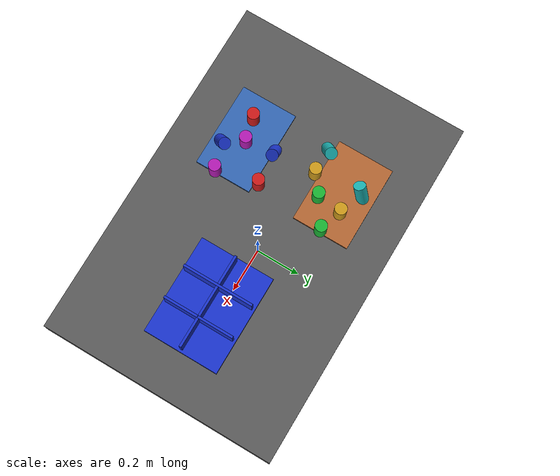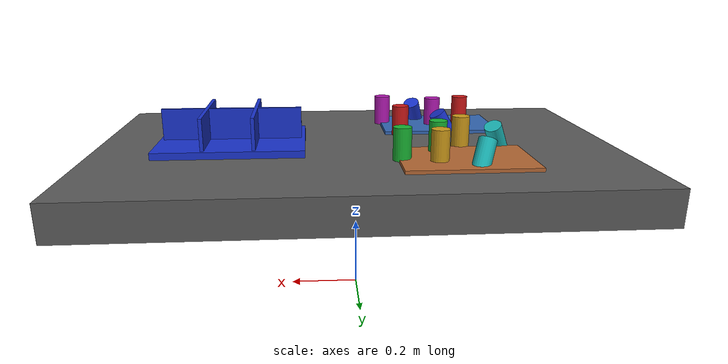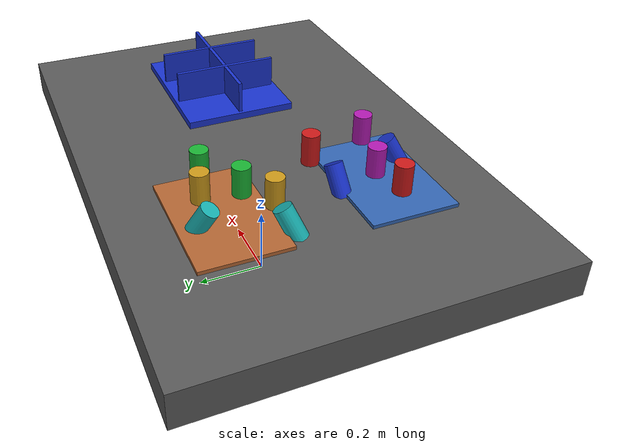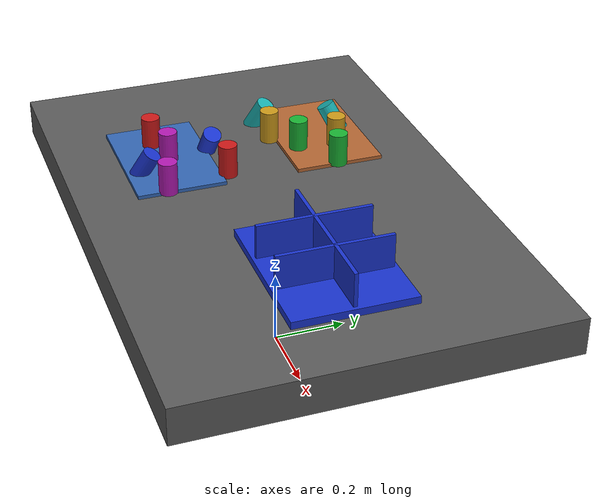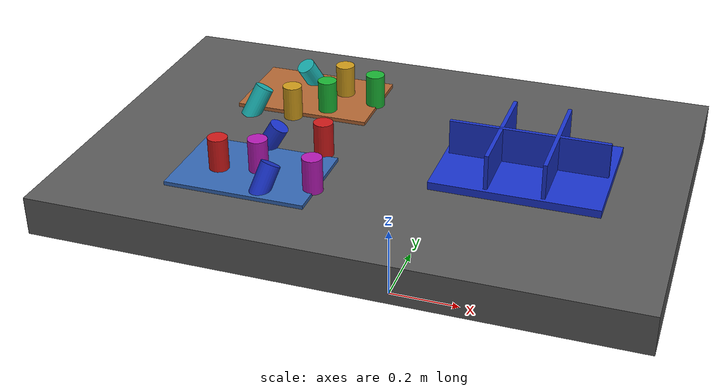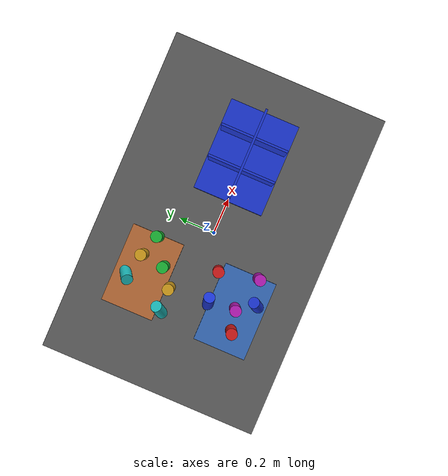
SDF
<?xml version="1.0" ?>
<sdf version="1.9">
  <!-- Standalone M1B scene.  The controller-backed Panda is spawned by the
       existing launch path; this file never alters the frozen M1A cube world. -->
  <world name="industrial_cylinder_v1">
    <physics name="bullet" type="bullet"><max_step_size>0.001</max_step_size><real_time_factor>1.0</real_time_factor></physics>
    <plugin name="gz::sim::systems::Physics" filename="gz-sim-physics-system"><engine><filename>gz-physics-bullet-featherstone-plugin</filename></engine></plugin>
    <plugin name="gz::sim::systems::UserCommands" filename="gz-sim-user-commands-system"/>
    <plugin name="gz::sim::systems::SceneBroadcaster" filename="gz-sim-scene-broadcaster-system"/>
    <plugin name="gz::sim::systems::Sensors" filename="gz-sim-sensors-system"><render_engine>ogre2</render_engine></plugin>
    <gravity>0 0 -9.81</gravity>
    <light type="directional" name="industrial_light"><pose>0 0 5 0 0 0</pose><direction>-0.3 0.2 -0.9</direction><diffuse>0.9 0.9 0.9 1</diffuse></light>
    <model name="industrial_work_table"><static>true</static><link name="link"><pose>0 0 0.4 0 0 0</pose><collision name="collision"><geometry><box><size>1.5 1.0 0.1</size></box></geometry></collision><visual name="visual"><geometry><box><size>1.5 1.0 0.1</size></box></geometry><material><diffuse>0.35 0.35 0.35 1</diffuse></material></visual></link></model>
    <model name="camera_fixture"><static>true</static><link name="camera_rgbd"><pose>-0.80 -0.80 1.40 0 0.77 0.93</pose><sensor name="front_rgbd" type="rgbd_camera"><always_on>1</always_on><update_rate>15</update_rate><topic>/xh/camera/rgbd</topic><camera><horizontal_fov>1.047</horizontal_fov><image><width>640</width><height>480</height><format>R8G8B8</format></image><clip><near>0.1</near><far>4.0</far></clip></camera></sensor></link></model>
    <model name="incoming_zone_a"><static>true</static><link name="link"><pose>-0.28 -0.22 0.455 0 0 0</pose><visual name="visual"><geometry><box><size>0.36 0.24 0.01</size></box></geometry><material><diffuse>0.2 0.4 0.7 1</diffuse></material></visual></link></model>
    <model name="incoming_zone_b"><static>true</static><link name="link"><pose>-0.28 0.22 0.455 0 0 0</pose><visual name="visual"><geometry><box><size>0.36 0.24 0.01</size></box></geometry><material><diffuse>0.7 0.4 0.2 1</diffuse></material></visual></link></model>
    <!-- M1B_RANDOM_PARTS_BEGIN -->
    <model name="cylinder_01"><pose>-0.1436 -0.0828 0.5000 0.0000 0.0000 -3.0005</pose><link name="link"><inertial><mass>0.06</mass></inertial><collision name="collision"><geometry><cylinder><radius>0.025</radius><length>0.09</length></cylinder></geometry></collision><visual name="visual"><geometry><cylinder><radius>0.025</radius><length>0.09</length></cylinder></geometry><material><diffuse>0.800 0.100 0.100 1</diffuse><specular>0.15 0.15 0.15 1</specular></material></visual></link></model>
    <model name="cylinder_02"><pose>-0.2183 0.1421 0.5000 3.1416 0.0000 1.5935</pose><link name="link"><inertial><mass>0.06</mass></inertial><collision name="collision"><geometry><cylinder><radius>0.025</radius><length>0.09</length></cylinder></geometry></collision><visual name="visual"><geometry><cylinder><radius>0.025</radius><length>0.09</length></cylinder></geometry><material><diffuse>0.100 0.700 0.200 1</diffuse><specular>0.15 0.15 0.15 1</specular></material></visual></link></model>
    <model name="cylinder_03"><pose>-0.2815 -0.0950 0.4800 0.4500 -0.3000 2.3295</pose><link name="link"><inertial><mass>0.06</mass></inertial><collision name="collision"><geometry><cylinder><radius>0.025</radius><length>0.09</length></cylinder></geometry></collision><visual name="visual"><geometry><cylinder><radius>0.025</radius><length>0.09</length></cylinder></geometry><material><diffuse>0.100 0.200 0.800 1</diffuse><specular>0.15 0.15 0.15 1</specular></material></visual></link></model>
    <model name="cylinder_04"><pose>-0.2054 0.2470 0.5000 0.0000 0.0000 -0.0476</pose><link name="link"><inertial><mass>0.06</mass></inertial><collision name="collision"><geometry><cylinder><radius>0.025</radius><length>0.09</length></cylinder></geometry></collision><visual name="visual"><geometry><cylinder><radius>0.025</radius><length>0.09</length></cylinder></geometry><material><diffuse>0.800 0.600 0.100 1</diffuse><specular>0.15 0.15 0.15 1</specular></material></visual></link></model>
    <model name="cylinder_05"><pose>-0.1059 -0.2568 0.5000 3.1416 0.0000 1.6315</pose><link name="link"><inertial><mass>0.06</mass></inertial><collision name="collision"><geometry><cylinder><radius>0.025</radius><length>0.09</length></cylinder></geometry></collision><visual name="visual"><geometry><cylinder><radius>0.025</radius><length>0.09</length></cylinder></geometry><material><diffuse>0.700 0.100 0.700 1</diffuse><specular>0.15 0.15 0.15 1</specular></material></visual></link></model>
    <model name="cylinder_06"><pose>-0.3142 0.2800 0.4800 0.4500 -0.3000 -0.0698</pose><link name="link"><inertial><mass>0.06</mass></inertial><collision name="collision"><geometry><cylinder><radius>0.025</radius><length>0.09</length></cylinder></geometry></collision><visual name="visual"><geometry><cylinder><radius>0.025</radius><length>0.09</length></cylinder></geometry><material><diffuse>0.100 0.700 0.700 1</diffuse><specular>0.15 0.15 0.15 1</specular></material></visual></link></model>
    <model name="cylinder_07"><pose>-0.3608 -0.2355 0.5000 0.0000 0.0000 -1.8473</pose><link name="link"><inertial><mass>0.06</mass></inertial><collision name="collision"><geometry><cylinder><radius>0.025</radius><length>0.09</length></cylinder></geometry></collision><visual name="visual"><geometry><cylinder><radius>0.025</radius><length>0.09</length></cylinder></geometry><material><diffuse>0.800 0.100 0.100 1</diffuse><specular>0.15 0.15 0.15 1</specular></material></visual></link></model>
    <model name="cylinder_08"><pose>-0.1091 0.2160 0.5000 3.1416 0.0000 -1.3814</pose><link name="link"><inertial><mass>0.06</mass></inertial><collision name="collision"><geometry><cylinder><radius>0.025</radius><length>0.09</length></cylinder></geometry></collision><visual name="visual"><geometry><cylinder><radius>0.025</radius><length>0.09</length></cylinder></geometry><material><diffuse>0.100 0.700 0.200 1</diffuse><specular>0.15 0.15 0.15 1</specular></material></visual></link></model>
    <model name="cylinder_09"><pose>-0.2169 -0.2925 0.4800 0.4500 -0.3000 -3.1150</pose><link name="link"><inertial><mass>0.06</mass></inertial><collision name="collision"><geometry><cylinder><radius>0.025</radius><length>0.09</length></cylinder></geometry></collision><visual name="visual"><geometry><cylinder><radius>0.025</radius><length>0.09</length></cylinder></geometry><material><diffuse>0.100 0.200 0.800 1</diffuse><specular>0.15 0.15 0.15 1</specular></material></visual></link></model>
    <model name="cylinder_10"><pose>-0.2945 0.0839 0.5000 0.0000 0.0000 0.5476</pose><link name="link"><inertial><mass>0.06</mass></inertial><collision name="collision"><geometry><cylinder><radius>0.025</radius><length>0.09</length></cylinder></geometry></collision><visual name="visual"><geometry><cylinder><radius>0.025</radius><length>0.09</length></cylinder></geometry><material><diffuse>0.800 0.600 0.100 1</diffuse><specular>0.15 0.15 0.15 1</specular></material></visual></link></model>
    <model name="cylinder_11"><pose>-0.2651 -0.2128 0.5000 3.1416 0.0000 -0.2267</pose><link name="link"><inertial><mass>0.06</mass></inertial><collision name="collision"><geometry><cylinder><radius>0.025</radius><length>0.09</length></cylinder></geometry></collision><visual name="visual"><geometry><cylinder><radius>0.025</radius><length>0.09</length></cylinder></geometry><material><diffuse>0.700 0.100 0.700 1</diffuse><specular>0.15 0.15 0.15 1</specular></material></visual></link></model>
    <model name="cylinder_12"><pose>-0.3992 0.0874 0.4800 0.4500 -0.3000 2.8891</pose><link name="link"><inertial><mass>0.06</mass></inertial><collision name="collision"><geometry><cylinder><radius>0.025</radius><length>0.09</length></cylinder></geometry></collision><visual name="visual"><geometry><cylinder><radius>0.025</radius><length>0.09</length></cylinder></geometry><material><diffuse>0.100 0.700 0.700 1</diffuse><specular>0.15 0.15 0.15 1</specular></material></visual></link></model>
    <!-- M1B_RANDOM_PARTS_END -->
    <model name="blue_partition_bin"><static>true</static><pose>0.36 0 0.45 0 0 0</pose><link name="link"><collision name="floor"><pose>0 0 0.01 0 0 0</pose><geometry><box><size>0.42 0.32 0.02</size></box></geometry></collision><visual name="floor_visual"><pose>0 0 0.01 0 0 0</pose><geometry><box><size>0.42 0.32 0.02</size></box></geometry><material><diffuse>0.1 0.2 0.8 1</diffuse></material></visual><visual name="row_divider"><pose>0 0 0.06 0 0 0</pose><geometry><box><size>0.40 0.01 0.10</size></box></geometry><material><diffuse>0.1 0.2 0.8 1</diffuse></material></visual><visual name="col_divider_a"><pose>-0.07 0 0.06 0 0 0</pose><geometry><box><size>0.01 0.30 0.10</size></box></geometry><material><diffuse>0.1 0.2 0.8 1</diffuse></material></visual><visual name="col_divider_b"><pose>0.07 0 0.06 0 0 0</pose><geometry><box><size>0.01 0.30 0.10</size></box></geometry><material><diffuse>0.1 0.2 0.8 1</diffuse></material></visual></link></model>
    <!-- Reserved only: second table, bin transport corridor, stackable-bin
         collision volume, and second arm mounting namespace. -->
  </world>
</sdf>
